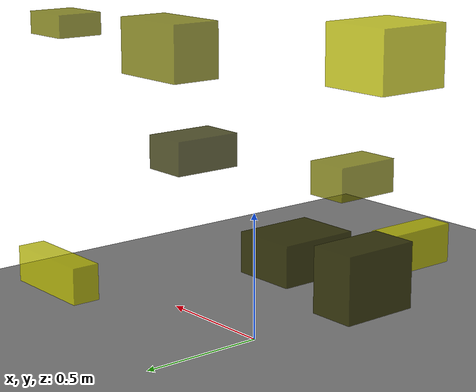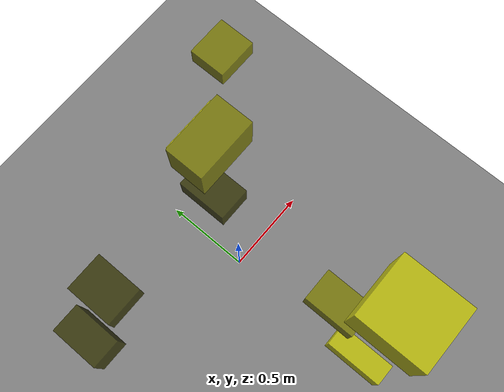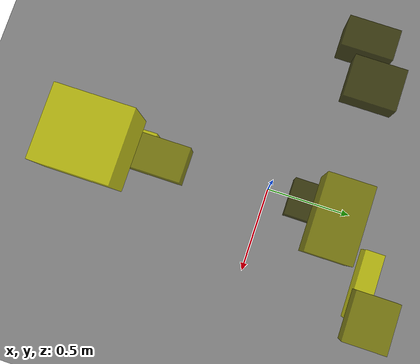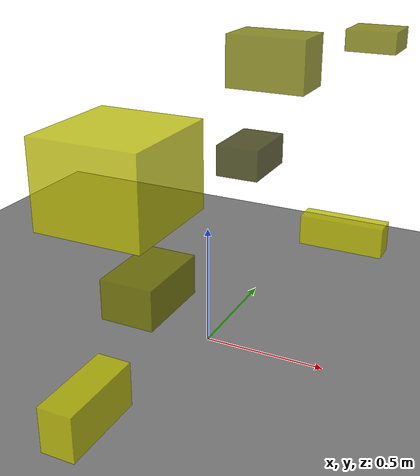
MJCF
<?xml version="1.0"?>
<mujoco model="obstacle_scene">
  <compiler angle="radian" coordinate="local"/>
  <option timestep="0.001" gravity="0 0 -9.81"/>

  <asset>
    <material name="obstacle_mat" rgba="0.8 0.8 0.0 0.8"/>
    <material name="ground_mat" rgba="0.5 0.5 0.5 1"/>
  </asset>

  <worldbody>
    <!-- Ground plane -->
    <geom name="ground" type="plane" size="3 3 0.1" material="ground_mat"/>

    <!-- Obstacles -->
    <body name="obstacle_0" pos="-0.611100 0.335834 0.557831">
      <geom name="obs_0" type="box" size="0.111212 0.136611 0.067959" rgba="0.2 0.2 0.0 0.8"/>
    </body>
    <body name="obstacle_1" pos="0.149094 0.273228 1.130367">
      <geom name="obs_1" type="box" size="0.160747 0.097420 0.103521" rgba="0.5 0.5 0.0 0.8"/>
    </body>
    <body name="obstacle_2" pos="0.137377 -0.812164 1.006084">
      <geom name="obs_2" type="box" size="0.167751 0.177643 0.134743" rgba="0.8 0.8 0.0 0.8"/>
    </body>
    <body name="obstacle_3" pos="0.080544 0.220441 0.757026">
      <geom name="obs_3" type="box" size="0.087425 0.132572 0.062515" rgba="0.2 0.2 0.0 0.8"/>
    </body>
    <body name="obstacle_4" pos="0.485236 0.493675 1.204442">
      <geom name="obs_4" type="box" size="0.098672 0.088088 0.041371" rgba="0.5 0.5 0.0 0.8"/>
    </body>
    <body name="obstacle_5" pos="-0.008381 -0.841583 0.214788">
      <geom name="obs_5" type="box" size="0.062072 0.163918 0.083311" rgba="0.8 0.8 0.0 0.8"/>
    </body>
    <body name="obstacle_6" pos="-0.831304 0.250149 0.508968">
      <geom name="obs_6" type="box" size="0.080709 0.135179 0.110111" rgba="0.2 0.2 0.0 0.8"/>
    </body>
    <body name="obstacle_7" pos="0.078041 -0.580400 0.538849">
      <geom name="obs_7" type="box" size="0.091828 0.143465 0.069863" rgba="0.5 0.5 0.0 0.8"/>
    </body>
    <body name="obstacle_8" pos="0.368725 0.631892 0.307701">
      <geom name="obs_8" type="box" size="0.187989 0.052842 0.067876" rgba="0.8 0.8 0.0 0.8"/>
    </body>
  </worldbody>
</mujoco>
